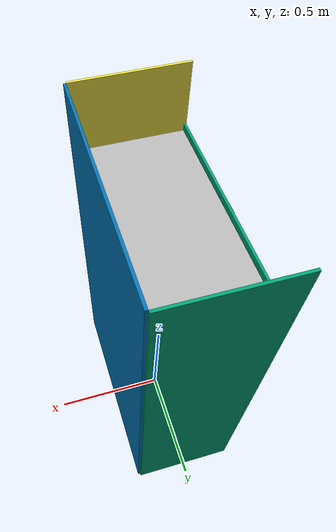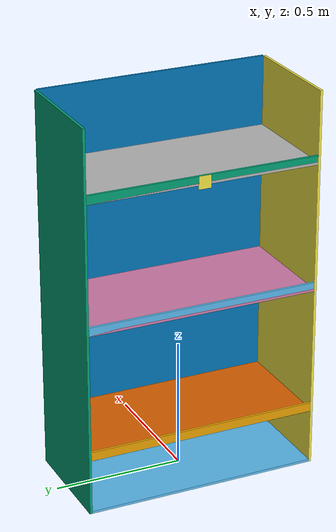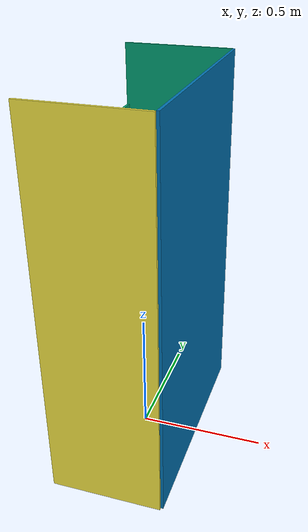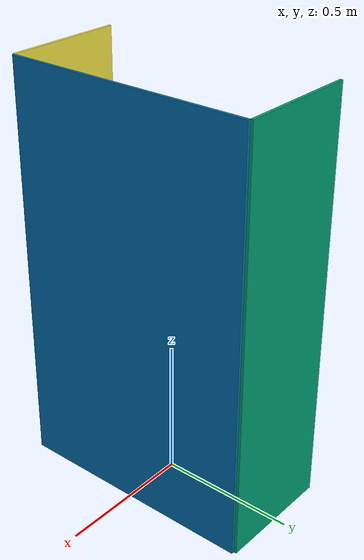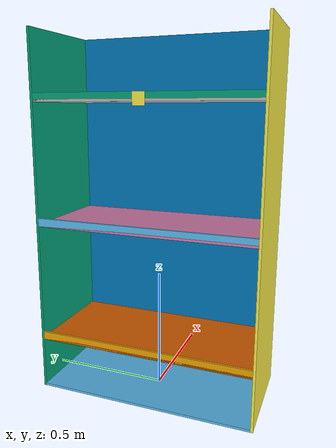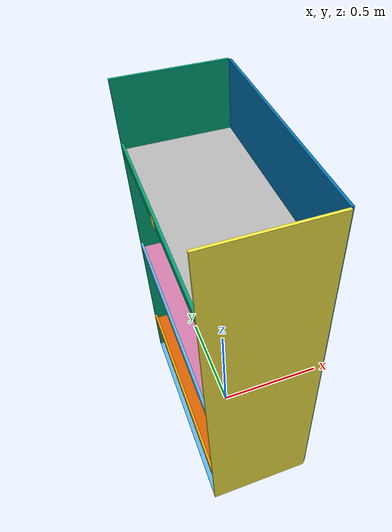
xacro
<robot xmlns:xacro="http://www.ros.org/wiki/xacro" name="shelf">
	<xacro:include filename="$(find fcsc_description)/model/create_box.xacro"/>

	<!-- shelf config -->
	<xacro:arg name="width" default="0.9"/>
	<xacro:arg name="depth" default="0.435"/>
	<xacro:arg name="board_1_height" default="0.22"/>
	<xacro:arg name="board_2_height" default="0.72"/>
	<xacro:arg name="board_3_height" default="1.22"/>
	<xacro:arg name="stopper_height" default="0.035"/>
	<xacro:arg name="thickness" default="0.01"/>
	<xacro:arg name="height" default="1.5"/>

	<xacro:arg name="marker_size" default="5"/>
  <xacro:arg name="marker_id" default="80"/>

  <property name="marker_size_p" value="${$(arg marker_size) * 0.01}"/>
  <property name="marker_id_p" value="$(arg marker_id)"/>

	<xacro:macro name="box_inertial" params="mass x y z *origin">
		<inertial>
			<mass value="${mass}" />
			<xacro:insert_block name="origin" />
			<inertia  ixx="${mass*(y*y+z*z)/12}" ixy = "0" ixz = "0"
								iyy="${mass*(x*x+z*z)/12}" iyz = "0"
								izz="${mass*(x*x+y*y)/12}" />
		</inertial>
	</xacro:macro>

	<!-- AR Marker -->
	<xacro:macro name="ar_marker" params="ar_marker_id ar_marker_size parent *origin">
		<link name="ar_marker_${ar_marker_id}">
			<xacro:box_inertial mass="0.0000001" x="${ar_marker_size}" y="${ar_marker_size}" z="0.0001">
				<origin xyz="0 0 0" rpy="0 0 1.57" />
			</xacro:box_inertial>
			<collision>
				<origin xyz="0 0 0" rpy="0 0 1.57"/>
				<geometry>
					<box size="${ar_marker_size} ${ar_marker_size} 0.0001"/>
				</geometry>
			</collision>
			<visual>
				<origin xyz="0 0 0" rpy="0 0 1.57"/>
				<geometry>
					<box size="${ar_marker_size} ${ar_marker_size} 0.0001"/>
				</geometry>
				<material name="ar_marker_${ar_marker_id}">
					<texture filename="package://fcsc_description/media/materials/textures/MarkerData_${ar_marker_id}.png"/>
				</material>
			</visual>
		</link>
		<gazebo reference="ar_marker_${ar_marker_id}">
			<material>ar_marker_${ar_marker_id}</material>
		</gazebo>
		<joint name="ar_joint_${ar_marker_id}" type="fixed">
			<parent link="${parent}"/>
			<child link="ar_marker_${ar_marker_id}"/>
			<xacro:insert_block name="origin" />
		</joint>
	</xacro:macro>

	<xacro:macro name="shelf">

		<link name="world"/>

		<!-- tanaita ground -->
		<xacro:create_box name="shelf_base" mass="5" x="$(arg depth)" y="$(arg width)" z="$(arg thickness)">
			<origin xyz="0 0 ${$(arg thickness) / 2.0}" rpy="0 0 0"/>
		</xacro:create_box>

		<xacro:create_box name="tanaita_side_R" mass="5" x="$(arg depth)" y="$(arg thickness)" z="$(arg height)">
			<origin xyz="0 0 ${$(arg height) / 2.0}" rpy="0 0 0"/>
		</xacro:create_box>

		<xacro:create_box name="tanaita_side_L" mass="5" x="$(arg depth)" y="$(arg thickness)" z="$(arg height)">
			<origin xyz="0 0 ${$(arg height) / 2.0}" rpy="0 0 0"/>
		</xacro:create_box>

		<xacro:create_box name="tanaita_oku" mass="5" x="$(arg thickness)" y="$(arg width)" z="$(arg height)">
			<origin xyz="0 0 ${$(arg height) / 2.0}" rpy="0 0 0"/>
		</xacro:create_box>

		<!-- shelf board link -->
		<xacro:create_box name="shelf_board_1" mass="5" x="$(arg depth)" y="$(arg width)" z="$(arg thickness)">
			<origin xyz="0 0 ${$(arg thickness) / 2.0}" rpy="0 0 0"/>
		</xacro:create_box>
		<xacro:create_box name="shelf_board_2" mass="5" x="$(arg depth)" y="$(arg width)" z="$(arg thickness)">
			<origin xyz="0 0 ${$(arg thickness) / 2.0}" rpy="0 0 0"/>
		</xacro:create_box>
		<xacro:create_box name="shelf_board_3" mass="5" x="$(arg depth)" y="$(arg width)" z="$(arg thickness)">
			<origin xyz="0 0 ${$(arg thickness) / 2.0}" rpy="0 0 0"/>
		</xacro:create_box>

		<!-- stopper link -->
		<xacro:create_box name="stopper_1" mass="5" x="$(arg thickness)" y="$(arg width)" z="$(arg stopper_height)">
			<origin xyz="0 0 ${$(arg stopper_height) / 2.0}" rpy="0 0 0"/>
		</xacro:create_box>
		<xacro:create_box name="stopper_2" mass="5" x="$(arg thickness)" y="$(arg width)" z="$(arg stopper_height)">
			<origin xyz="0 0 ${$(arg stopper_height) / 2.0}" rpy="0 0 0"/>
		</xacro:create_box>
		<xacro:create_box name="stopper_3" mass="5" x="$(arg thickness)" y="$(arg width)" z="$(arg stopper_height)">
			<origin xyz="0 0 ${$(arg stopper_height) / 2.0}" rpy="0 0 0"/>
		</xacro:create_box>

		<joint name="world_fixed" type="fixed">
			<parent link="world"/>
			<child link="shelf_base"/>
			<origin xyz="0 0 0"/>
		</joint>

		<!-- board joint  -->
		<joint name="board_1_joint" type="fixed">
			<parent link="shelf_base"/>
			<child link="shelf_board_1"/>
			<origin xyz="0 0 $(arg board_1_height)" rpy="0 0 0"/>
		</joint>
		<joint name="board_2_joint" type="fixed">
			<parent link="shelf_base"/>
			<child link="shelf_board_2"/>
			<origin xyz="0 0 $(arg board_2_height)" rpy="0 0 0"/>
		</joint>
		<joint name="board_3_joint" type="fixed">
			<parent link="shelf_base"/>
			<child link="shelf_board_3"/>
			<origin xyz="0 0 $(arg board_3_height)" rpy="0 0 0"/>
		</joint>

		<!-- sopper joint -->
		<joint name="stopper_1_joint" type="fixed">
			<parent link="shelf_base"/>
			<child link="stopper_1"/>
			<origin xyz="${-$(arg depth)/2+$(arg thickness)/2} 0 $(arg board_1_height)" rpy="0 0 0"/>
		</joint>
		<joint name="stopper_2_joint" type="fixed">
			<parent link="shelf_base"/>
			<child link="stopper_2"/>
			<origin xyz="${-$(arg depth)/2+$(arg thickness)/2} 0 $(arg board_2_height)" rpy="0 0 0"/>
		</joint>
		<joint name="stopper_3_joint" type="fixed">
			<parent link="shelf_base"/>
			<child link="stopper_3"/>
			<origin xyz="${-$(arg depth)/2+$(arg thickness)/2} 0 $(arg board_3_height)" rpy="0 0 0"/>
		</joint>

		<joint name="side_R_joint" type="fixed">
			<parent link="shelf_base"/>
			<child link="tanaita_side_R"/>
			<origin xyz="0 ${($(arg width)+$(arg thickness))/2} 0" rpy="0 0 0"/>
		</joint>

		<joint name="side_L_joint" type="fixed">
			<parent link="shelf_base"/>
			<child link="tanaita_side_L"/>
			<origin xyz="0 ${-($(arg width)+$(arg thickness))/2} 0" rpy="0 0 0"/>
		</joint>

		<joint name="oku_joint" type="fixed">
			<parent link="shelf_base"/>
			<child link="tanaita_oku"/>
			<origin xyz="${($(arg depth)+$(arg thickness))/2} 0 0" rpy="0 0 0"/>
		</joint>

		<!-- ar marker -->
		<xacro:ar_marker ar_marker_id="${marker_id_p}" ar_marker_size="${marker_size_p}" parent="shelf_board_3">
			<origin xyz="${-$(arg depth) / 2.0 - 0.001} 0 ${-marker_size_p / 2.0 + $(arg stopper_height)}" rpy="1.57 0 -1.57"/>
		</xacro:ar_marker>

	</xacro:macro>
	<xacro:shelf/>
</robot>

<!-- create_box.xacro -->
<robot xmlns:xacro="http://www.ros.org/wiki/xacro" name="common">
  <xacro:macro name="create_box" params="name mass x y z *origin visual:=true">
    <link name="${name}">
      <inertial>
        <mass value="${mass}"/>
        <xacro:insert_block name="origin" />
        <inertia  ixx="${mass*(y*y+z*z)/12}" ixy = "0" ixz = "0"
                  iyy="${mass*(x*x+z*z)/12}" iyz = "0"
                  izz="${mass*(x*x+y*y)/12}" />
      </inertial>
      <collision>
        <xacro:insert_block name="origin"/>
        <geometry>
          <box size="${x} ${y} ${z}"/>
        </geometry>
      </collision>
      <xacro:if value="${visual}">
        <visual>
          <xacro:insert_block name="origin"/>
          <geometry>
            <box size="${x} ${y} ${z}"/>
          </geometry>
        </visual>
      </xacro:if>
    </link>
  </xacro:macro>
  <!-- example -->
</robot>
